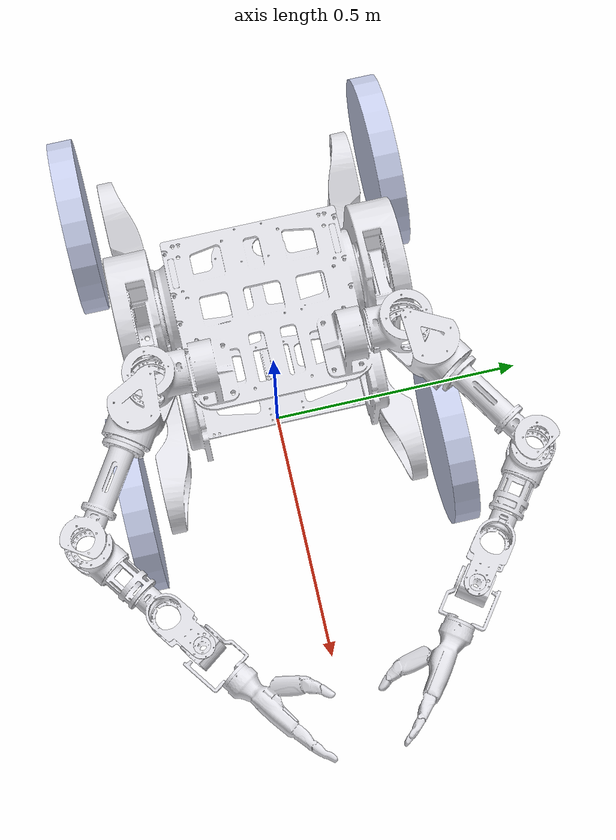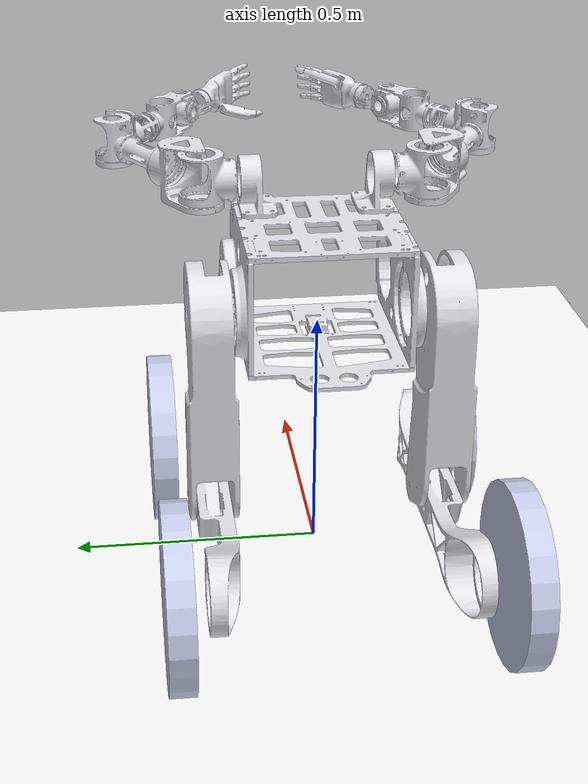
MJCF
<mujoco model="y1aurdf20240523">
  <compiler angle="radian" meshdir="../meshes/"/>

  <default>
    <joint limited="true"/>
    <motor ctrllimited = "true"/>
    <geom condim ="4" contype="1" conaffinity="15" solref = "0.001 2" friction="0.9 0.1 0.1"/>
    <equality solref="0.001 2"/>
  </default>

  <asset>
    <mesh name="base_link" file="base_link.STL"/>
    <mesh name="left_hip_link" file="left_hip_link.STL"/>
    <mesh name="left_knee_link" file="left_knee_link.STL"/>
    <mesh name="lb_wheel_link" file="lb_wheel_link.STL"/>
    <mesh name="lf_wheel_link" file="lf_wheel_link.STL"/>
    <mesh name="right_hip_link" file="right_hip_link.STL"/>
    <mesh name="right_knee_link" file="right_knee_link.STL"/>
    <mesh name="rb_wheel_link" file="rb_wheel_link.STL"/>
    <mesh name="rf_wheel_link" file="rf_wheel_link.STL"/>

    <mesh name="right_arm_link1" file="right_arm_link1.STL"/>
    <mesh name="right_arm_link2" file="right_arm_link2.STL"/>
    <mesh name="right_arm_link3" file="right_arm_link3.STL"/>
    <mesh name="right_arm_link4" file="right_arm_link4.STL"/>
    <mesh name="right_arm_link5" file="right_arm_link5.STL"/>
    <mesh name="right_arm_link6" file="right_arm_link6.STL"/>
    <mesh name="right_arm_link7" file="right_arm_link7.STL"/>

    <mesh name="left_arm_link1" file="left_arm_link1.STL"/>
    <mesh name="left_arm_link2" file="left_arm_link2.STL"/>
    <mesh name="left_arm_link3" file="left_arm_link3.STL"/>
    <mesh name="left_arm_link4" file="left_arm_link4.STL"/>
    <mesh name="left_arm_link5" file="left_arm_link5.STL"/>
    <mesh name="left_arm_link6" file="left_arm_link6.STL"/>
    <mesh name="left_arm_link7" file="left_arm_link7.STL"/>
  </asset>

  <asset>
    <texture name="texplane" type="2d" builtin="checker" rgb1=".4 .4 .4" rgb2=".6 .6 .6" width="512" height="512" mark="cross" markrgb="0 0 0" />
    <material name="plane" reflectance='0' texture="texplane" texrepeat="1 1" texuniform="true" rgba=".7 .7 .7 1" />
  </asset>

  <worldbody>

    <light directional="true" diffuse=".8 .8 .8" pos="0 0 10" dir="0 0 -10" />
    <camera name="track" mode="trackcom" pos="0 -2.3 1.6" xyaxes="1 0 0 0 0.707 0.707" />
    <geom name="floor" pos="0 0 0" euler="0 0 0" size="0 0 1" type="plane" material="plane"
      condim="3" conaffinity="1" contype="1" rgba="1 1 1 1" />

    <body name="base_link" pos="0.0 0.0 0.477">
      <inertial pos="0.0417941 -0.000164041 0.180258" quat="-0.00285023 0.605099 0.00486556 0.79613" mass="43.5623" diaginertia="3.45263 2.39605 1.73387"/>
      <geom type="mesh" rgba="0.8902 0.8902 0.91373 1" mesh="base_link"/>

      <joint name="floating_base_joint" type="free"/>
      <site name="imu" pos="0 0 0" />

      <geom pos="0.052504 -0.1585 0.306" quat="0.707388 0 0.706825 0" type="mesh" contype="0" conaffinity="0" group="1" density="0" rgba="0.8902 0.8902 0.91373 1" mesh="right_arm_link1"/>
      <geom pos="0.052504 -0.1585 0.306" quat="0.707388 0 0.706825 0" type="mesh" rgba="0.8902 0.8902 0.91373 1" mesh="right_arm_link1"/>
      <geom pos="0.052504 -0.2205 0.306" quat="0.620792 -0.33914 0.620297 0.33887" type="mesh" contype="0" conaffinity="0" group="1" density="0" rgba="0.8902 0.8902 0.91373 1" mesh="right_arm_link2"/>
      <geom pos="0.052504 -0.2205 0.306" quat="0.620792 -0.33914 0.620297 0.33887" type="mesh" rgba="0.8902 0.8902 0.91373 1" mesh="right_arm_link2"/>
      <geom pos="0.159371 -0.289118 0.306085" quat="0.620792 -0.33914 0.620297 0.33887" type="mesh" contype="0" conaffinity="0" group="1" density="0" rgba="0.8902 0.8902 0.91373 1" mesh="right_arm_link3"/>
      <geom pos="0.159371 -0.289118 0.306085" quat="0.620792 -0.33914 0.620297 0.33887" type="mesh" rgba="0.8902 0.8902 0.91373 1" mesh="right_arm_link3"/>
      <geom pos="0.304945 -0.382591 0.306201" quat="0.320869 -0.63043 0.320613 0.629928" type="mesh" contype="0" conaffinity="0" group="1" density="0" rgba="0.8902 0.8902 0.91373 1" mesh="right_arm_link4"/>
      <geom pos="0.304945 -0.382591 0.306201" quat="0.320869 -0.63043 0.320613 0.629928" type="mesh" rgba="0.8902 0.8902 0.91373 1" mesh="right_arm_link4"/>
      <geom pos="0.412475 -0.30432 0.306287" quat="0.320869 -0.63043 0.320613 0.629928" type="mesh" contype="0" conaffinity="0" group="1" density="0" rgba="0.8902 0.8902 0.91373 1" mesh="right_arm_link5"/>
      <geom pos="0.412475 -0.30432 0.306287" quat="0.320869 -0.63043 0.320613 0.629928" type="mesh" rgba="0.8902 0.8902 0.91373 1" mesh="right_arm_link5"/>
      <geom pos="0.515154 -0.22958 0.306368" quat="0.320869 -0.63043 0.320613 0.629928" type="mesh" contype="0" conaffinity="0" group="1" density="0" rgba="0.8902 0.8902 0.91373 1" mesh="right_arm_link6"/>
      <geom pos="0.515154 -0.22958 0.306368" quat="0.320869 -0.63043 0.320613 0.629928" type="mesh" rgba="0.8902 0.8902 0.91373 1" mesh="right_arm_link6"/>
      <geom pos="0.515154 -0.22958 0.306368" quat="0.320869 -0.63043 0.320613 0.629928" type="mesh" contype="0" conaffinity="0" group="1" density="0" rgba="0.8902 0.8902 0.91373 1" mesh="right_arm_link7"/>
      <geom pos="0.515154 -0.22958 0.306368" quat="0.320869 -0.63043 0.320613 0.629928" type="mesh" rgba="0.8902 0.8902 0.91373 1" mesh="right_arm_link7"/>
      <geom pos="0.052504 0.1585 0.306" quat="0.707388 0 0.706825 0" type="mesh" contype="0" conaffinity="0" group="1" density="0" rgba="0.8902 0.8902 0.91373 1" mesh="left_arm_link1"/>
      <geom pos="0.052504 0.1585 0.306" quat="0.707388 0 0.706825 0" type="mesh" rgba="0.8902 0.8902 0.91373 1" mesh="left_arm_link1"/>
      <geom pos="0.052504 0.2205 0.306" quat="0.620792 0.33914 0.620297 -0.33887" type="mesh" contype="0" conaffinity="0" group="1" density="0" rgba="0.8902 0.8902 0.91373 1" mesh="left_arm_link2"/>
      <geom pos="0.052504 0.2205 0.306" quat="0.620792 0.33914 0.620297 -0.33887" type="mesh" rgba="0.8902 0.8902 0.91373 1" mesh="left_arm_link2"/>
      <geom pos="0.159371 0.289118 0.306085" quat="0.620792 0.33914 0.620297 -0.33887" type="mesh" contype="0" conaffinity="0" group="1" density="0" rgba="0.8902 0.8902 0.91373 1" mesh="left_arm_link3"/>
      <geom pos="0.159371 0.289118 0.306085" quat="0.620792 0.33914 0.620297 -0.33887" type="mesh" rgba="0.8902 0.8902 0.91373 1" mesh="left_arm_link3"/>
      <geom pos="0.304945 0.382591 0.306201" quat="0.320869 0.63043 0.320613 -0.629928" type="mesh" contype="0" conaffinity="0" group="1" density="0" rgba="0.8902 0.8902 0.91373 1" mesh="left_arm_link4"/>
      <geom pos="0.304945 0.382591 0.306201" quat="0.320869 0.63043 0.320613 -0.629928" type="mesh" rgba="0.8902 0.8902 0.91373 1" mesh="left_arm_link4"/>
      <geom pos="0.412475 0.30432 0.306287" quat="0.320869 0.63043 0.320613 -0.629928" type="mesh" contype="0" conaffinity="0" group="1" density="0" rgba="0.8902 0.8902 0.91373 1" mesh="left_arm_link5"/>
      <geom pos="0.412475 0.30432 0.306287" quat="0.320869 0.63043 0.320613 -0.629928" type="mesh" rgba="0.8902 0.8902 0.91373 1" mesh="left_arm_link5"/>
      <geom pos="0.515154 0.22958 0.306368" quat="0.320869 0.63043 0.320613 -0.629928" type="mesh" contype="0" conaffinity="0" group="1" density="0" rgba="0.8902 0.8902 0.91373 1" mesh="left_arm_link6"/>
      <geom pos="0.515154 0.22958 0.306368" quat="0.320869 0.63043 0.320613 -0.629928" type="mesh" rgba="0.8902 0.8902 0.91373 1" mesh="left_arm_link6"/>
      <geom pos="0.515154 0.22958 0.306368" quat="0.320869 0.63043 0.320613 -0.629928" type="mesh" contype="0" conaffinity="0" group="1" density="0" rgba="0.8902 0.8902 0.91373 1" mesh="left_arm_link7"/>
      <geom pos="0.515154 0.22958 0.306368" quat="0.320869 0.63043 0.320613 -0.629928" type="mesh" rgba="0.8902 0.8902 0.91373 1" mesh="left_arm_link7"/>

      <body name="left_hip_link" pos="-0.107 0.1605 0.098">
        <inertial pos="-0.002364 0.012651 -0.046916" quat="0.417366 -0.181579 0.00724159 0.890383" mass="21.375" diaginertia="0.476635 0.42016 0.181475"/>
        <joint name="left_hip_joint" pos="0 0 0" axis="0 1 0" range="-0.3665 1.0472" limited="true"/>
        <geom type="mesh" contype="0" conaffinity="0" group="1" density="0" rgba="0.8902 0.8902 0.91373 1" mesh="left_hip_link"/>
        <geom type="mesh" rgba="0.8902 0.8902 0.91373 1" mesh="left_hip_link"/>
        <body name="left_knee_link" pos="0 0.0625 -0.4">
          <inertial pos="-0.036877 0.045091 -0.000204" quat="0.498131 0.500541 0.499394 0.501926" mass="12.594" diaginertia="0.885956 0.858589 0.0747183"/>
          <joint name="left_knee_joint" pos="0 0 0" axis="0 1 0" range="-1.0472 0.384"  limited="true"/>
          <geom type="mesh" contype="0" conaffinity="0" group="1" density="0" rgba="0.8902 0.8902 0.91373 1" mesh="left_knee_link"/>
          <geom type="mesh" rgba="0.8902 0.8902 0.91373 1" mesh="left_knee_link"/>
          <body name="lb_wheel_link" pos="-0.33 0.06675 0">
            <inertial pos="0 0.019711 0" quat="0.707107 0 0 0.707107" mass="2.763" diaginertia="0.059327 0.030178 0.030178"/>
            <joint name="lb_wheel_joint" pos="0 0 0" axis="0 1 0" range="-200000 200000" />
            <geom size="0.175 0.025" pos="0 0.02 0" quat="0.707107 0.707107 0 0" type="cylinder" rgba="0.79216 0.81961 0.93333 1"/>
          </body>
          <body name="lf_wheel_link" pos="0.25 0.06675 0">
            <inertial pos="0 0.019711 0" quat="0.707107 0 0 0.707107" mass="2.763" diaginertia="0.059327 0.030178 0.030178"/>
            <joint name="lf_wheel_joint" pos="0 0 0" axis="0 1 0" range="-200000 200000" />
            <geom size="0.175 0.025" pos="0 0.02 0" quat="0.707107 0.707107 0 0" type="cylinder" rgba="0.79216 0.81961 0.93333 1"/>
          </body>
        </body>
      </body>
      <body name="right_hip_link" pos="-0.107 -0.1605 0.098">
        <inertial pos="-0.002379 -0.012657 -0.046897" quat="0.890329 0.007359 -0.181582 0.417477" mass="21.38" diaginertia="0.476705 0.420237 0.181458"/>
        <joint name="right_hip_joint" pos="0 0 0" axis="0 1 0" range="-0.3665 1.0472" limited="true"/>
        <geom type="mesh" contype="0" conaffinity="0" group="1" density="0" rgba="0.8902 0.8902 0.91373 1" mesh="right_hip_link"/>
        <geom type="mesh" rgba="0.8902 0.8902 0.91373 1" mesh="right_hip_link"/>
        <body name="right_knee_link" pos="0 -0.0625 -0.4">
          <inertial pos="-0.03675 -0.045099 -0.000197" quat="0.501933 0.499423 0.500464 0.498172" mass="12.592" diaginertia="0.885947 0.858569 0.074709"/>
          <joint name="right_knee_joint" pos="0 0 0" axis="0 1 0" range="-1.0472 0.384" limited="true"/>
          <geom type="mesh" contype="0" conaffinity="0" group="1" density="0" rgba="0.8902 0.8902 0.91373 1" mesh="right_knee_link"/>
          <geom type="mesh" rgba="0.8902 0.8902 0.91373 1" mesh="right_knee_link"/>
          <body name="rb_wheel_link" pos="-0.33 -0.06675 0">
            <inertial pos="0 -0.019711 0" quat="0.707107 0 0 0.707107" mass="2.763" diaginertia="0.059327 0.030178 0.030178"/>
            <joint name="rb_wheel_joint" pos="0 0 0" axis="0 1 0" range="-200000 200000"/>
            <geom size="0.175 0.025" pos="0 -0.02 0" quat="0.707107 0.707107 0 0" type="cylinder" rgba="0.79216 0.81961 0.93333 1"/>
          </body>
          <body name="rf_wheel_link" pos="0.25 -0.06675 0">
            <inertial pos="0 -0.019711 0" quat="0.707107 0 0 0.707107" mass="2.763" diaginertia="0.059327 0.030178 0.030178"/>
            <joint name="rf_wheel_joint" pos="0 0 0" axis="0 1 0" range="-200000 200000"/>
            <geom size="0.175 0.025" pos="0 -0.02 0" quat="0.707107 0.707107 0 0" type="cylinder" rgba="0.79216 0.81961 0.93333 1"/>
          </body>
        </body>
      </body>

    </body>
  </worldbody>

  <contact>
    <exclude body1="base_link" body2="left_hip_link"/>
    <exclude body1="base_link" body2="right_hip_link"/>
  </contact>

  <actuator>
    <motor name="left_hip_joint" joint="left_hip_joint" ctrllimited="true" ctrlrange="-745 745" gear="1" />
    <motor name="left_knee_joint" joint="left_knee_joint" ctrllimited="true" ctrlrange="-880 880" gear="1" />
    <motor name="lb_wheel_joint" joint="lb_wheel_joint" ctrllimited="true" ctrlrange="-460 460" gear="1" />
    <motor name="lf_wheel_joint" joint="lf_wheel_joint" ctrllimited="true" ctrlrange="-460 460" gear="1" />
    <motor name="right_hip_joint" joint="right_hip_joint" ctrllimited="true" ctrlrange="-745 745" gear="1" />
    <motor name="right_knee_joint" joint="right_knee_joint" ctrllimited="true" ctrlrange="-880 880" gear="1" />
    <motor name="rb_wheel_joint" joint="rb_wheel_joint" ctrllimited="true" ctrlrange="-460 460" gear="1" />
    <motor name="rf_wheel_joint" joint="rf_wheel_joint" ctrllimited="true" ctrlrange="-460 460" gear="1" />
  </actuator>

  <sensor>
    <actuatorpos name="left_hip_joint_p" actuator="left_hip_joint" />
    <actuatorvel name="left_hip_joint_v" actuator="left_hip_joint" />
    <actuatorfrc name="left_hip_joint_f" actuator="left_hip_joint" noise="0.001" />
    <actuatorpos name="left_knee_joint_p" actuator="left_knee_joint" />
    <actuatorvel name="left_knee_joint_v" actuator="left_knee_joint" />
    <actuatorfrc name="left_knee_joint_f" actuator="left_knee_joint" noise="0.001" />
    <actuatorpos name="lb_wheel_joint_p" actuator="lb_wheel_joint" />
    <actuatorvel name="lb_wheel_joint_v" actuator="lb_wheel_joint" />
    <actuatorfrc name="lb_wheel_joint_f" actuator="lb_wheel_joint" noise="0.001" />
    <actuatorpos name="lf_wheel_joint_p" actuator="lf_wheel_joint" />
    <actuatorvel name="lf_wheel_joint_v" actuator="lf_wheel_joint" />
    <actuatorfrc name="lf_wheel_joint_f" actuator="lf_wheel_joint" noise="0.001" />
    <actuatorpos name="right_hip_joint_p" actuator="right_hip_joint" />
    <actuatorvel name="right_hip_joint_v" actuator="right_hip_joint" />
    <actuatorfrc name="right_hip_joint_f" actuator="right_hip_joint" noise="0.001" />
    <actuatorpos name="right_knee_joint_p" actuator="right_knee_joint" />
    <actuatorvel name="right_knee_joint_v" actuator="right_knee_joint" />
    <actuatorfrc name="right_knee_joint_f" actuator="right_knee_joint" noise="0.001" />
    <actuatorpos name="rb_wheel_joint_p" actuator="rb_wheel_joint" />
    <actuatorvel name="rb_wheel_joint_v" actuator="rb_wheel_joint" />
    <actuatorfrc name="rb_wheel_joint_f" actuator="rb_wheel_joint" noise="0.001" />
    <actuatorpos name="rf_wheel_joint_p" actuator="rf_wheel_joint" />
    <actuatorvel name="rf_wheel_joint_v" actuator="rf_wheel_joint" />
    <actuatorfrc name="rf_wheel_joint_f" actuator="rf_wheel_joint" noise="0.001" />

    <framequat     name='orientation' objtype='site' noise='0.001' objname='imu'/>
    <framepos     name='position' objtype='site' noise='0.001' objname='imu'/>
    <gyro          name='angular-velocity'    site='imu' noise='0.005' cutoff='34.9'/>
    <velocimeter   name='linear-velocity'     site='imu' noise='0.001' cutoff='30'/>
    <accelerometer name='linear-acceleration' site='imu' noise='0.005' cutoff='157'/>
    <magnetometer  name='magnetometer'        site='imu'/>

  </sensor>

  <!-- 初始位置-4wheel -->
  <keyframe>
    <key time="0"
      qpos="0 0 0.477 1 0 0 0
      0 0 0 0
      0 0 0 0"/>
  </keyframe>

  <!-- 初始位置-2wheel -->
  <keyframe>
    <key time="0" qpos="0 0 0.5297 1 0 0 0
    0.6109 -0.0873 0 0
    0.6109 -0.0873 0 0" />
  </keyframe>

</mujoco>
